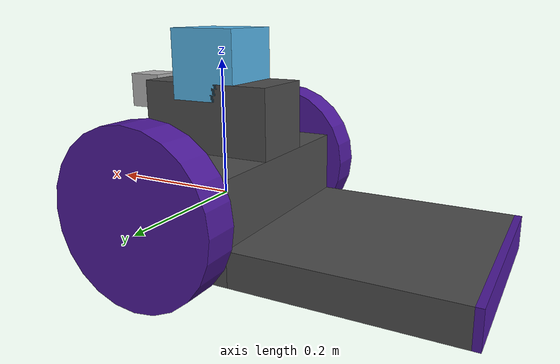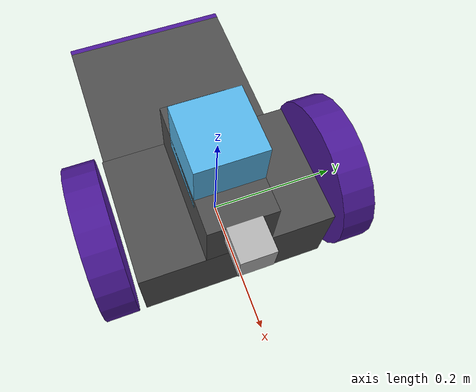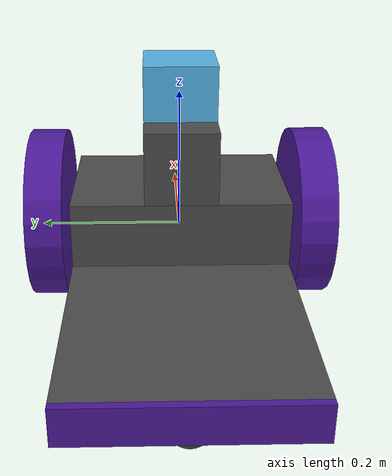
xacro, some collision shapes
<?xml version='1.0'?>

<robot name="delivery_robot"
  xmlns:xacro="http://www.ros.org/wiki/xacro">

  <!-- #### INERTIA MACROS ####  -->
  <xacro:macro name="cuboid_inertia" params="m x y z">
    <inertia ixx="${m*(y*y+z*z)/12}" ixy = "0" ixz = "0" iyy="${m*(x*x+z*z)/12}" iyz = "0" izz="${m*(x*x+y*y)/12}" />
  </xacro:macro>

  <xacro:macro name="cylinder_inertia" params="m r l">
    <inertia ixx="${m*(3*r*r+l*l)/12}" ixy = "0" ixz = "0" iyy="${m*(3*r*r+l*l)/12}" iyz = "0" izz="${m*r*r/2}" />
  </xacro:macro>

  <xacro:macro name="sphere_inertia" params="m r">
    <inertia ixx="${2*m*r*r/5}" ixy = "0" ixz = "0" iyy="${2*m*r*r/5}" iyz = "0" izz="${2*m*r*r/5}" />
  </xacro:macro>

  <link name="robot_footprint"></link>

  <xacro:include filename="$(find delivery_robot_simulation)/models/urdf/delivery_robot.gazebo" />

  <joint name="robot_footprint_joint" type="fixed">
    <origin xyz="0 0 0" rpy="0 0 0" />
    <parent link="robot_footprint"/>
    <child link="base_chassis" />
  </joint>

  <link name='base_chassis'>
    <pose>0 0 0.12 0 0 0</pose>

    <inertial>
      <mass value="10"/>
      <origin xyz="0 0 0" rpy=" 0 0 0"/>
      <inertia ixx="0.09133" ixy = "0" ixz = "0" iyy="0.04967" iyz = "0" izz="0.10833" />
    </inertial>

    <collision name='collision'>
      <origin xyz="0 0 0" rpy=" 0 0 0"/>
      <geometry>
        <box size="0.2 0.3 0.14"/>
      </geometry>
    </collision>

    <visual name='chassis_visual'>
      <origin xyz="0 0 0" rpy=" 0 0 0"/>
      <geometry>
        <box size="0.2 0.3 0.14"/>
      </geometry>
    </visual>

  </link>

  <link name='base_hokuyo'>
    <inertial>
      <mass value="0.01"/>
      <origin xyz="0 0 0" rpy=" 0 0 0"/>
      <inertia ixx="0.000016667" ixy = "0" ixz = "0" iyy="0.00004167" iyz = "0" izz="0.00004167" />
    </inertial>

    <collision name='collision'>
      <origin xyz="0 0 0" rpy=" 0 0 0"/>
      <geometry>
        <box size="0.2 0.1 0.1"/>
      </geometry>
    </collision>

    <visual name='sup_visual'>
      <origin xyz="0 0 0" rpy=" 0 0 0"/>
      <geometry>
        <box size="0.2 0.1 0.1"/>
      </geometry>
    </visual>
  </link>

  <joint type="fixed" name="base_hokuyo_joint">
    <origin xyz="0 0 0.12" rpy="0 0 0"/>
    <child link="base_hokuyo"/>
    <parent link="base_chassis"/>
  </joint>

  <link name='sup_chassis'>

    <inertial>
      <mass value="3"/>
      <origin xyz="0 0 0" rpy=" 0 0 0"/>
      <inertia ixx="0.023125" ixy = "0" ixz = "0" iyy="0.023125" iyz = "0" izz="0.045" />
    </inertial>

    <collision name='collision'>
      <origin xyz="0 0 0" rpy=" 0 0 0"/>
      <geometry>
        <box size="0.3 0.3 0.05"/>
      </geometry>
    </collision>

    <visual name='chassis_visual'>
      <origin xyz="0 0 0" rpy=" 0 0 0"/>
      <geometry>
        <box size="0.3 0.3 0.05"/>
      </geometry>
    </visual>

    <collision name='caster_collision'>
      <origin xyz="-0.12 0 -0.025" rpy=" 0 0 0"/>
      <geometry>
        <sphere radius="0.029"/>
      </geometry>
    </collision>

    <visual name='caster_visual'>
      <origin xyz="-0.12 0 -0.025" rpy=" 0 0 0"/>
      <geometry>
        <sphere radius="0.03"/>
      </geometry>
    </visual>

  </link>

  <joint type="fixed" name="sup_chassis_joint">
    <origin xyz="-0.25 0 -0.045" rpy="0 0 0"/>
    <child link="sup_chassis"/>
    <parent link="base_chassis"/>
  </joint>

  <!-- Add a weigth bar on the end of the robot's bucket - (TEST ONLY) -->
  <link name='back_sup_chassis'>

    <inertial>
      <mass value="0.1"/>
      <origin xyz="0 0 0" rpy=" 0 0 0"/>
      <inertia ixx="0.0007708" ixy = "0" ixz = "0" iyy="0.000021667" iyz = "0" izz="0.0007508" />
    </inertial>

    <collision name='collision'>
      <origin xyz="0 0 0" rpy=" 0 0 0"/>
      <geometry>
        <box size="0.01 0.3 0.05"/>
      </geometry>
    </collision>

    <visual name='back_sup_chassis_visual'>
      <origin xyz="0 0 0" rpy=" 0 0 0"/>
      <geometry>
        <box size="0.01 0.3 0.05"/>
      </geometry>
    </visual>

  </link>

  <joint type="fixed" name="back_sup_chassis_joint">
    <origin xyz="-0.155 0 0" rpy="0 0 0"/>
    <child link="back_sup_chassis"/>
    <parent link="sup_chassis"/>
  </joint>

  <!-- ### WHEELS ### -->

  <link name='left_wheel'>

    <inertial>
      <mass value="2"/>
      <origin xyz="0.0 0 0" rpy=" 0 1.5707 1.5707"/>
      <inertia ixx="0.007617" ixy = "0" ixz = "0" iyy="0.007617" iyz = "0" izz="0.0144" />
    </inertial>

    <collision name='collision'>
      <origin xyz="0.0 0 0" rpy=" 0 1.5707 1.5707"/>
      <geometry>
        <cylinder radius="0.12" length="0.05" />
      </geometry>
    </collision>

    <visual name='left_wheel_visual'>
      <origin xyz="0.0 0 0" rpy=" 0 1.5707 1.5707"/>
      <geometry>
        <cylinder radius="0.12" length="0.05" />
      </geometry>
    </visual>
  </link>

  <link name='right_wheel'>

    <inertial>
      <mass value="2"/>
      <origin xyz="0.0 0 0" rpy=" 0 1.5707 1.5707"/>
      <inertia ixx="0.007617" ixy = "0" ixz = "0" iyy="0.007617" iyz = "0" izz="0.0144" />
    </inertial>

    <collision name='collision'>
      <origin xyz="0.0 0 0" rpy=" 0 1.5707 1.5707"/>
      <geometry>
        <cylinder radius="0.12" length="0.05" />
      </geometry>
    </collision>

    <visual name='right_wheel_visual'>
      <origin xyz="0.0 0 0" rpy=" 0 1.5707 1.5707"/>
      <geometry>
        <cylinder radius="0.12" length="0.05" />
      </geometry>
    </visual>
  </link>

  <joint type="continuous" name="left_wheel_hinge">
    <origin xyz="0 0.185 0.02" rpy="0 0 0"/>
    <child link="left_wheel"/>
    <parent link="base_chassis"/>
    <axis xyz="0 1 0" rpy="0 0 0"/>
    <limit effort="100" velocity="100"/>
    <dynamics damping="0.01" friction="0.1"/>
  </joint>

  <joint type="continuous" name="right_wheel_hinge">
    <origin xyz="0 -0.185 0.02" rpy="0 0 0"/>
    <child link="right_wheel"/>
    <parent link="base_chassis"/>
    <axis xyz="0 1 0" rpy="0 0 0"/>
    <limit effort="100" velocity="100"/>
    <dynamics damping="0.01" friction="0.1"/>
  </joint>

  <!-- ### CAMERA ### -->

  <link name="camera_link">
    <inertial>
      <mass value="0.1"/>
      <origin xyz="0.0 0 0" rpy=" 0 0 0"/>
      <inertia ixx="1e-6" ixy="0" ixz="0" iyy="1e-6" iyz="0" izz="1e-6" />
    </inertial>
    <collision name='camera_collision'>
      <origin xyz="0 0 0" rpy=" 0 0 0"/>
      <geometry>
        <box size="0.05 0.05 0.05"/>
      </geometry>
    </collision>

    <visual name='camera_visual'>
      <origin xyz="0 0 0" rpy=" 0 0 0"/>
      <geometry>
        <box size="0.05 0.05 0.05"/>
      </geometry>
    </visual>
  </link>

  <joint type="fixed" name="camera_joint">
    <origin xyz="0.125 0 0.15" rpy="0 0 0"/>
    <child link="camera_link"/>
    <parent link="base_chassis"/>
    <axis xyz="0 1 0" rpy="0 0 0.02"/>
  </joint>

  <joint name="camera_optical_joint" type="fixed">
    <origin xyz="0 0 0" rpy="-1.5707 0 -1.5707"/>
    <parent link="camera_link"/>
    <child link="camera_link_optical"/>
  </joint>

  <link name="camera_link_optical">
  </link>

  <!-- ### LIDAR ### -->

  <link name="hokuyo">
    <inertial>
      <mass value="1e-5"/>
      <origin xyz="0.0 0 0" rpy=" 0 0 0"/>
      <inertia ixx="1e-6" ixy="0" ixz="0" iyy="1e-6" iyz="0" izz="1e-6" />
    </inertial>

    <collision name='hokuyo_collision'>
      <origin xyz="0 0 0" rpy=" 0 0 0"/>
      <geometry>
        <box size="0.1 0.1 0.1"/>
      </geometry>
    </collision>

    <visual name='hokuyo_visual'>
      <origin xyz="0 0 0" rpy=" 0 0 0"/>
      <geometry>
        <mesh filename="package://delivery_robot_simulation/models/meshes/hokuyo.dae"/>
      </geometry>
    </visual>

  </link>

  <joint type="fixed" name="hokuyo_joint">
    <origin xyz="0 0 0.075" rpy="0 0 0"/>
    <child link="hokuyo"/>
    <parent link="base_hokuyo"/>
    <axis xyz="0 1 0" rpy="0 0 0"/>
  </joint>

</robot>
